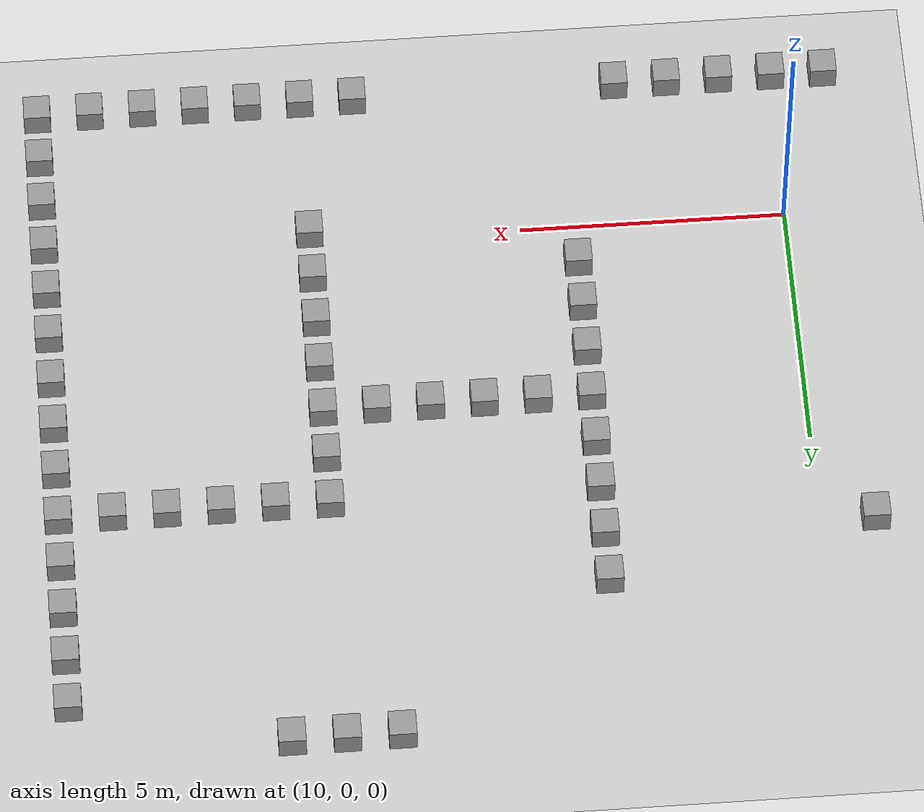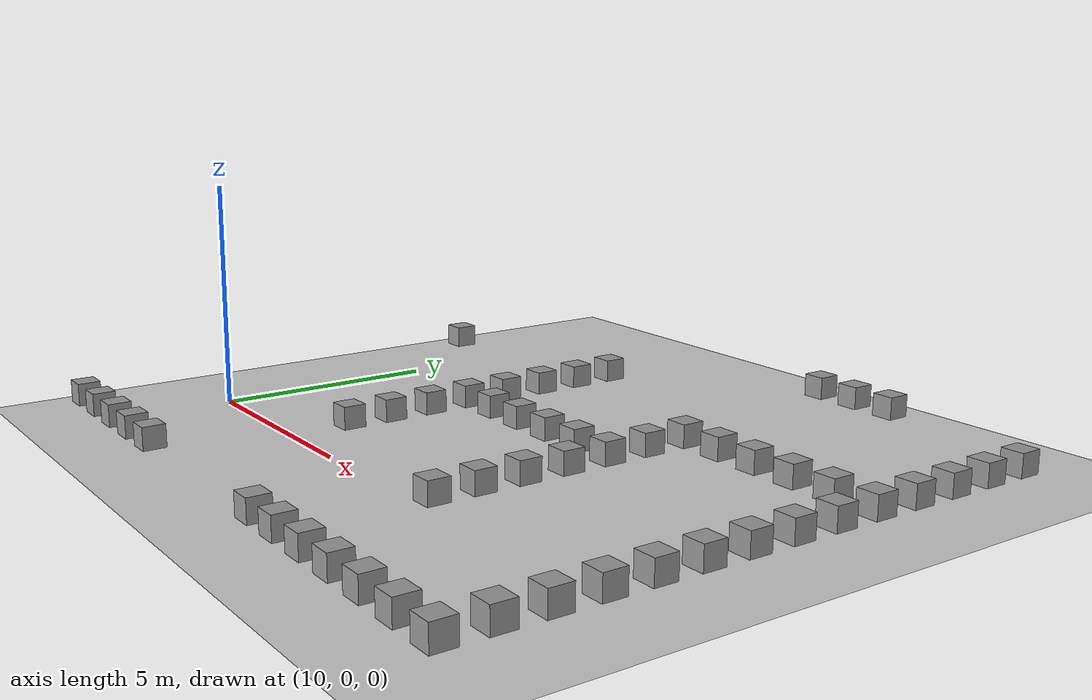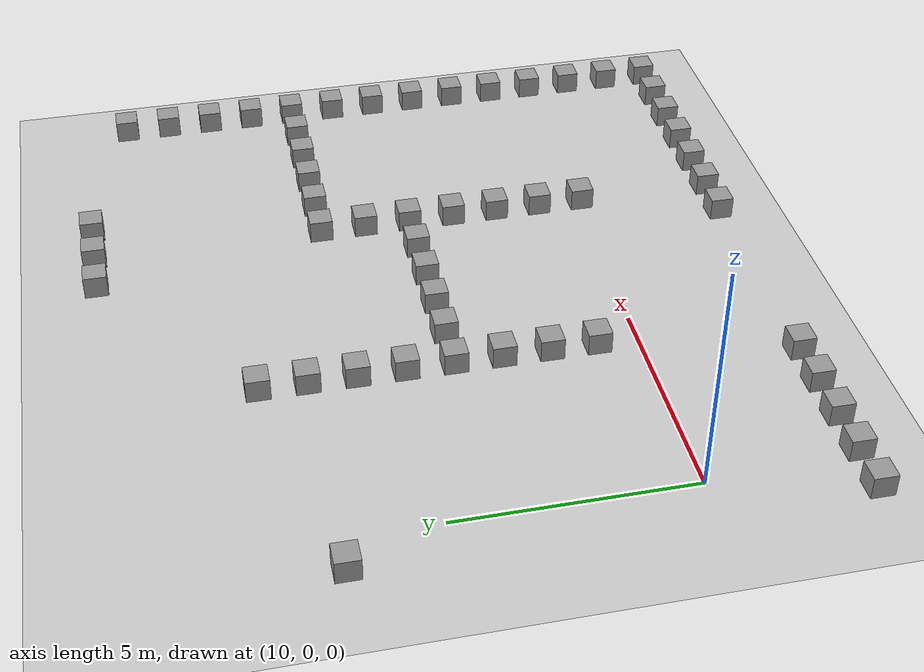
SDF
<sdf version="1.6">
 <world name="default">
  <model name="ground_plane">
   <static>1</static>
   <link name="link">
    <collision name="collision">
     <geometry><plane><normal>0 0 1</normal><size>100 100</size></plane></geometry>
     <surface><friction><ode><mu>100</mu><mu2>50</mu2></ode></friction></surface>
    </collision>
    <visual name="visual">
     <cast_shadows>0</cast_shadows>
     <geometry><plane><normal>0 0 1</normal><size>100 100</size></plane></geometry>
     <material>
      <script><uri>file://media/materials/scripts/gazebo.material</uri><name>Gazebo/Grey</name></script>
     </material>
    </visual>
    <velocity_decay><linear>0</linear><angular>0</angular></velocity_decay>
   </link>
  </model>
  <model name="unit_box_25">
   <pose>9.00009 -3.00001 0.5 0 0 -1.5e-05</pose>
   <static>true</static>
   <link name="link">
    <inertial>
     <mass>1</mass>
     <inertia><ixx>1</ixx><ixy>0</ixy><ixz>0</ixz><iyy>1</iyy><iyz>0</iyz><izz>1</izz></inertia>
    </inertial>
    <collision name="collision"><geometry><box><size>0.5 0.5 0.5</size></box></geometry></collision>
    <visual name="visual">
     <geometry><box><size>0.5 0.5 0.5</size></box></geometry>
     <material>
      <script><uri>file://media/materials/scripts/gazebo.material</uri><name>Gazebo/Grey</name></script>
     </material>
    </visual>
    <velocity_decay><linear>0</linear><angular>0</angular></velocity_decay>
   </link>
   <static>0</static>
  </model>
  <model name="unit_box_35">
   <pose>10.0001 -2.99995 0.5 0 0 -1.5e-05</pose>
   <static>true</static>
   <link name="link">
    <inertial>
     <mass>1</mass>
     <inertia><ixx>1</ixx><ixy>0</ixy><ixz>0</ixz><iyy>1</iyy><iyz>0</iyz><izz>1</izz></inertia>
    </inertial>
    <collision name="collision"><geometry><box><size>0.5 0.5 0.5</size></box></geometry></collision>
    <visual name="visual">
     <geometry><box><size>0.5 0.5 0.5</size></box></geometry>
     <material>
      <script><uri>file://media/materials/scripts/gazebo.material</uri><name>Gazebo/Grey</name></script>
     </material>
    </visual>
    <velocity_decay><linear>0</linear><angular>0</angular></velocity_decay>
   </link>
   <static>0</static>
  </model>
  <model name="unit_box_36">
   <pose>11.0001 -2.99997 0.5 0 0 -1.5e-05</pose>
   <static>true</static>
   <link name="link">
    <inertial>
     <mass>1</mass>
     <inertia><ixx>1</ixx><ixy>0</ixy><ixz>0</ixz><iyy>1</iyy><iyz>0</iyz><izz>1</izz></inertia>
    </inertial>
    <collision name="collision"><geometry><box><size>0.5 0.5 0.5</size></box></geometry></collision>
    <visual name="visual">
     <geometry><box><size>0.5 0.5 0.5</size></box></geometry>
     <material>
      <script><uri>file://media/materials/scripts/gazebo.material</uri><name>Gazebo/Grey</name></script>
     </material>
    </visual>
    <velocity_decay><linear>0</linear><angular>0</angular></velocity_decay>
   </link>
   <static>0</static>
  </model>
  <model name="unit_box_37">
   <pose>12.0001 -2.99998 0.5 0 -0 -1.4e-05</pose>
   <static>true</static>
   <link name="link">
    <inertial>
     <mass>1</mass>
     <inertia><ixx>1</ixx><ixy>0</ixy><ixz>0</ixz><iyy>1</iyy><iyz>0</iyz><izz>1</izz></inertia>
    </inertial>
    <collision name="collision"><geometry><box><size>0.5 0.5 0.5</size></box></geometry></collision>
    <visual name="visual">
     <geometry><box><size>0.5 0.5 0.5</size></box></geometry>
     <material>
      <script><uri>file://media/materials/scripts/gazebo.material</uri><name>Gazebo/Grey</name></script>
     </material>
    </visual>
    <velocity_decay><linear>0</linear><angular>0</angular></velocity_decay>
   </link>
   <static>0</static>
  </model>
  <model name="unit_box_38">
   <pose>9.00001 7 0.5 -0 -0 -3e-06</pose>
   <static>true</static>
   <link name="link">
    <inertial>
     <mass>1</mass>
     <inertia><ixx>1</ixx><ixy>0</ixy><ixz>0</ixz><iyy>1</iyy><iyz>0</iyz><izz>1</izz></inertia>
    </inertial>
    <collision name="collision"><geometry><box><size>0.5 0.5 0.5</size></box></geometry></collision>
    <visual name="visual">
     <geometry><box><size>0.5 0.5 0.5</size></box></geometry>
     <material>
      <script><uri>file://media/materials/scripts/gazebo.material</uri><name>Gazebo/Grey</name></script>
     </material>
    </visual>
    <velocity_decay><linear>0</linear><angular>0</angular></velocity_decay>
   </link>
   <static>0</static>
  </model>
  <model name="unit_box_129">
   <pose>13.0001 -3 0.5 0 0 -1.3e-05</pose>
   <static>true</static>
   <link name="link">
    <inertial>
     <mass>1</mass>
     <inertia><ixx>1</ixx><ixy>0</ixy><ixz>0</ixz><iyy>1</iyy><iyz>0</iyz><izz>1</izz></inertia>
    </inertial>
    <collision name="collision"><geometry><box><size>0.5 0.5 0.5</size></box></geometry></collision>
    <visual name="visual">
     <geometry><box><size>0.5 0.5 0.5</size></box></geometry>
     <material>
      <script><uri>file://media/materials/scripts/gazebo.material</uri><name>Gazebo/Grey</name></script>
     </material>
    </visual>
    <velocity_decay><linear>0</linear><angular>0</angular></velocity_decay>
   </link>
   <static>0</static>
  </model>
  <model name="unit_box_166">
   <pose>20 11 0.5 0 -0 5e-06</pose>
   <static>true</static>
   <link name="link">
    <inertial>
     <mass>1</mass>
     <inertia><ixx>1</ixx><ixy>0</ixy><ixz>0</ixz><iyy>1</iyy><iyz>0</iyz><izz>1</izz></inertia>
    </inertial>
    <collision name="collision"><geometry><box><size>0.5 0.5 0.5</size></box></geometry></collision>
    <visual name="visual">
     <geometry><box><size>0.5 0.5 0.5</size></box></geometry>
     <material>
      <script><uri>file://media/materials/scripts/gazebo.material</uri><name>Gazebo/Grey</name></script>
     </material>
    </visual>
    <velocity_decay><linear>0</linear><angular>0</angular></velocity_decay>
   </link>
   <static>0</static>
  </model>
  <model name="unit_box_167">
   <pose>19 11 0.5 0 -0 4e-06</pose>
   <static>true</static>
   <link name="link">
    <inertial>
     <mass>1</mass>
     <inertia><ixx>1</ixx><ixy>0</ixy><ixz>0</ixz><iyy>1</iyy><iyz>0</iyz><izz>1</izz></inertia>
    </inertial>
    <collision name="collision"><geometry><box><size>0.5 0.5 0.5</size></box></geometry></collision>
    <visual name="visual">
     <geometry><box><size>0.5 0.5 0.5</size></box></geometry>
     <material>
      <script><uri>file://media/materials/scripts/gazebo.material</uri><name>Gazebo/Grey</name></script>
     </material>
    </visual>
    <velocity_decay><linear>0</linear><angular>0</angular></velocity_decay>
   </link>
   <static>0</static>
  </model>
  <model name="unit_box_168">
   <pose>18 11 0.5 0 -0 3e-06</pose>
   <static>true</static>
   <link name="link">
    <inertial>
     <mass>1</mass>
     <inertia><ixx>1</ixx><ixy>0</ixy><ixz>0</ixz><iyy>1</iyy><iyz>0</iyz><izz>1</izz></inertia>
    </inertial>
    <collision name="collision"><geometry><box><size>0.5 0.5 0.5</size></box></geometry></collision>
    <visual name="visual">
     <geometry><box><size>0.5 0.5 0.5</size></box></geometry>
     <material>
      <script><uri>file://media/materials/scripts/gazebo.material</uri><name>Gazebo/Grey</name></script>
     </material>
    </visual>
    <velocity_decay><linear>0</linear><angular>0</angular></velocity_decay>
   </link>
   <static>0</static>
  </model>
  <model name="unit_box_169">
   <pose>14 8.00027 0.5 -0 -0 -7.2e-05</pose>
   <static>true</static>
   <link name="link">
    <inertial>
     <mass>1</mass>
     <inertia><ixx>1</ixx><ixy>0</ixy><ixz>0</ixz><iyy>1</iyy><iyz>0</iyz><izz>1</izz></inertia>
    </inertial>
    <collision name="collision"><geometry><box><size>0.5 0.5 0.5</size></box></geometry></collision>
    <visual name="visual">
     <geometry><box><size>0.5 0.5 0.5</size></box></geometry>
     <material>
      <script><uri>file://media/materials/scripts/gazebo.material</uri><name>Gazebo/Grey</name></script>
     </material>
    </visual>
    <velocity_decay><linear>0</linear><angular>0</angular></velocity_decay>
   </link>
   <static>0</static>
  </model>
  <model name="unit_box_170">
   <pose>14 7.00026 0.5 0 -0 -7.2e-05</pose>
   <static>true</static>
   <link name="link">
    <inertial>
     <mass>1</mass>
     <inertia><ixx>1</ixx><ixy>0</ixy><ixz>0</ixz><iyy>1</iyy><iyz>0</iyz><izz>1</izz></inertia>
    </inertial>
    <collision name="collision"><geometry><box><size>0.5 0.5 0.5</size></box></geometry></collision>
    <visual name="visual">
     <geometry><box><size>0.5 0.5 0.5</size></box></geometry>
     <material>
      <script><uri>file://media/materials/scripts/gazebo.material</uri><name>Gazebo/Grey</name></script>
     </material>
    </visual>
    <velocity_decay><linear>0</linear><angular>0</angular></velocity_decay>
   </link>
   <static>0</static>
  </model>
  <model name="unit_box_171">
   <pose>13.9998 6.00025 0.5 0 -0 -8.2e-05</pose>
   <static>true</static>
   <link name="link">
    <inertial>
     <mass>1</mass>
     <inertia><ixx>1</ixx><ixy>0</ixy><ixz>0</ixz><iyy>1</iyy><iyz>0</iyz><izz>1</izz></inertia>
    </inertial>
    <collision name="collision"><geometry><box><size>0.5 0.5 0.5</size></box></geometry></collision>
    <visual name="visual">
     <geometry><box><size>0.5 0.5 0.5</size></box></geometry>
     <material>
      <script><uri>file://media/materials/scripts/gazebo.material</uri><name>Gazebo/Grey</name></script>
     </material>
    </visual>
    <velocity_decay><linear>0</linear><angular>0</angular></velocity_decay>
   </link>
   <static>0</static>
  </model>
  <model name="unit_box_172">
   <pose>13.9996 5.00025 0.5 -0 -0 -8.2e-05</pose>
   <static>true</static>
   <link name="link">
    <inertial>
     <mass>1</mass>
     <inertia><ixx>1</ixx><ixy>0</ixy><ixz>0</ixz><iyy>1</iyy><iyz>0</iyz><izz>1</izz></inertia>
    </inertial>
    <collision name="collision"><geometry><box><size>0.5 0.5 0.5</size></box></geometry></collision>
    <visual name="visual">
     <geometry><box><size>0.5 0.5 0.5</size></box></geometry>
     <material>
      <script><uri>file://media/materials/scripts/gazebo.material</uri><name>Gazebo/Grey</name></script>
     </material>
    </visual>
    <velocity_decay><linear>0</linear><angular>0</angular></velocity_decay>
   </link>
   <static>0</static>
  </model>
  <model name="unit_box_173">
   <pose>13.9973 3.99985 0.5 0 -0 0.000731</pose>
   <static>true</static>
   <link name="link">
    <inertial>
     <mass>1</mass>
     <inertia><ixx>1</ixx><ixy>0</ixy><ixz>0</ixz><iyy>1</iyy><iyz>0</iyz><izz>1</izz></inertia>
    </inertial>
    <collision name="collision"><geometry><box><size>0.5 0.5 0.5</size></box></geometry></collision>
    <visual name="visual">
     <geometry><box><size>0.5 0.5 0.5</size></box></geometry>
     <material>
      <script><uri>file://media/materials/scripts/gazebo.material</uri><name>Gazebo/Grey</name></script>
     </material>
    </visual>
    <velocity_decay><linear>0</linear><angular>0</angular></velocity_decay>
   </link>
   <static>0</static>
  </model>
  <model name="unit_box_174">
   <pose>13.9996 2.99959 0.5 0 -0 0.000224</pose>
   <static>true</static>
   <link name="link">
    <inertial>
     <mass>1</mass>
     <inertia><ixx>1</ixx><ixy>0</ixy><ixz>0</ixz><iyy>1</iyy><iyz>0</iyz><izz>1</izz></inertia>
    </inertial>
    <collision name="collision"><geometry><box><size>0.5 0.5 0.5</size></box></geometry></collision>
    <visual name="visual">
     <geometry><box><size>0.5 0.5 0.5</size></box></geometry>
     <material>
      <script><uri>file://media/materials/scripts/gazebo.material</uri><name>Gazebo/Grey</name></script>
     </material>
    </visual>
    <velocity_decay><linear>0</linear><angular>0</angular></velocity_decay>
   </link>
   <static>0</static>
  </model>
  <model name="unit_box_175">
   <pose>13.9999 1.99957 0.5 0 -0 0.000199</pose>
   <static>true</static>
   <link name="link">
    <inertial>
     <mass>1</mass>
     <inertia><ixx>1</ixx><ixy>0</ixy><ixz>0</ixz><iyy>1</iyy><iyz>0</iyz><izz>1</izz></inertia>
    </inertial>
    <collision name="collision"><geometry><box><size>0.5 0.5 0.5</size></box></geometry></collision>
    <visual name="visual">
     <geometry><box><size>0.5 0.5 0.5</size></box></geometry>
     <material>
      <script><uri>file://media/materials/scripts/gazebo.material</uri><name>Gazebo/Grey</name></script>
     </material>
    </visual>
    <velocity_decay><linear>0</linear><angular>0</angular></velocity_decay>
   </link>
   <static>0</static>
  </model>
  <model name="unit_box_176">
   <pose>14 0.999522 0.5 0 -0 9.7e-05</pose>
   <static>true</static>
   <link name="link">
    <inertial>
     <mass>1</mass>
     <inertia><ixx>1</ixx><ixy>0</ixy><ixz>0</ixz><iyy>1</iyy><iyz>0</iyz><izz>1</izz></inertia>
    </inertial>
    <collision name="collision"><geometry><box><size>0.5 0.5 0.5</size></box></geometry></collision>
    <visual name="visual">
     <geometry><box><size>0.5 0.5 0.5</size></box></geometry>
     <material>
      <script><uri>file://media/materials/scripts/gazebo.material</uri><name>Gazebo/Grey</name></script>
     </material>
    </visual>
    <velocity_decay><linear>0</linear><angular>0</angular></velocity_decay>
   </link>
   <static>0</static>
  </model>
  <model name="unit_box_177">
   <pose>14.9974 4.00019 0.5 0 -0 0.000926</pose>
   <static>true</static>
   <link name="link">
    <inertial>
     <mass>1</mass>
     <inertia><ixx>1</ixx><ixy>0</ixy><ixz>0</ixz><iyy>1</iyy><iyz>0</iyz><izz>1</izz></inertia>
    </inertial>
    <collision name="collision"><geometry><box><size>0.5 0.5 0.5</size></box></geometry></collision>
    <visual name="visual">
     <geometry><box><size>0.5 0.5 0.5</size></box></geometry>
     <material>
      <script><uri>file://media/materials/scripts/gazebo.material</uri><name>Gazebo/Grey</name></script>
     </material>
    </visual>
    <velocity_decay><linear>0</linear><angular>0</angular></velocity_decay>
   </link>
   <static>0</static>
  </model>
  <model name="unit_box_178">
   <pose>15.9974 4.00015 0.5 0 -0 0.001009</pose>
   <static>true</static>
   <link name="link">
    <inertial>
     <mass>1</mass>
     <inertia><ixx>1</ixx><ixy>0</ixy><ixz>0</ixz><iyy>1</iyy><iyz>0</iyz><izz>1</izz></inertia>
    </inertial>
    <collision name="collision"><geometry><box><size>0.5 0.5 0.5</size></box></geometry></collision>
    <visual name="visual">
     <geometry><box><size>0.5 0.5 0.5</size></box></geometry>
     <material>
      <script><uri>file://media/materials/scripts/gazebo.material</uri><name>Gazebo/Grey</name></script>
     </material>
    </visual>
    <velocity_decay><linear>0</linear><angular>0</angular></velocity_decay>
   </link>
   <static>0</static>
  </model>
  <model name="unit_box_179">
   <pose>16.9975 3.99993 0.5 0 -0 0.001188</pose>
   <static>true</static>
   <link name="link">
    <inertial>
     <mass>1</mass>
     <inertia><ixx>1</ixx><ixy>0</ixy><ixz>0</ixz><iyy>1</iyy><iyz>0</iyz><izz>1</izz></inertia>
    </inertial>
    <collision name="collision"><geometry><box><size>0.5 0.5 0.5</size></box></geometry></collision>
    <visual name="visual">
     <geometry><box><size>0.5 0.5 0.5</size></box></geometry>
     <material>
      <script><uri>file://media/materials/scripts/gazebo.material</uri><name>Gazebo/Grey</name></script>
     </material>
    </visual>
    <velocity_decay><linear>0</linear><angular>0</angular></velocity_decay>
   </link>
   <static>0</static>
  </model>
  <model name="unit_box_180">
   <pose>17.9977 4.00059 0.5 0 -0 0.001689</pose>
   <static>true</static>
   <link name="link">
    <inertial>
     <mass>1</mass>
     <inertia><ixx>1</ixx><ixy>0</ixy><ixz>0</ixz><iyy>1</iyy><iyz>0</iyz><izz>1</izz></inertia>
    </inertial>
    <collision name="collision"><geometry><box><size>0.5 0.5 0.5</size></box></geometry></collision>
    <visual name="visual">
     <geometry><box><size>0.5 0.5 0.5</size></box></geometry>
     <material>
      <script><uri>file://media/materials/scripts/gazebo.material</uri><name>Gazebo/Grey</name></script>
     </material>
    </visual>
    <velocity_decay><linear>0</linear><angular>0</angular></velocity_decay>
   </link>
   <static>0</static>
  </model>
  <model name="unit_box_181">
   <pose>18.9984 4.00065 0.5 0 -0 0.002125</pose>
   <static>true</static>
   <link name="link">
    <inertial>
     <mass>1</mass>
     <inertia><ixx>1</ixx><ixy>0</ixy><ixz>0</ixz><iyy>1</iyy><iyz>0</iyz><izz>1</izz></inertia>
    </inertial>
    <collision name="collision"><geometry><box><size>0.5 0.5 0.5</size></box></geometry></collision>
    <visual name="visual">
     <geometry><box><size>0.5 0.5 0.5</size></box></geometry>
     <material>
      <script><uri>file://media/materials/scripts/gazebo.material</uri><name>Gazebo/Grey</name></script>
     </material>
    </visual>
    <velocity_decay><linear>0</linear><angular>0</angular></velocity_decay>
   </link>
   <static>0</static>
  </model>
  <model name="unit_box_182">
   <pose>24.0018 -0.999661 0.5 0 -0 7.7e-05</pose>
   <static>true</static>
   <link name="link">
    <inertial>
     <mass>1</mass>
     <inertia><ixx>1</ixx><ixy>0</ixy><ixz>0</ixz><iyy>1</iyy><iyz>0</iyz><izz>1</izz></inertia>
    </inertial>
    <collision name="collision"><geometry><box><size>0.5 0.5 0.5</size></box></geometry></collision>
    <visual name="visual">
     <geometry><box><size>0.5 0.5 0.5</size></box></geometry>
     <material>
      <script><uri>file://media/materials/scripts/gazebo.material</uri><name>Gazebo/Grey</name></script>
     </material>
    </visual>
    <velocity_decay><linear>0</linear><angular>0</angular></velocity_decay>
   </link>
   <static>0</static>
  </model>
  <model name="unit_box_183">
   <pose>18.996 5.00065 0.5 0 -0 0.002125</pose>
   <static>true</static>
   <link name="link">
    <inertial>
     <mass>1</mass>
     <inertia><ixx>1</ixx><ixy>0</ixy><ixz>0</ixz><iyy>1</iyy><iyz>0</iyz><izz>1</izz></inertia>
    </inertial>
    <collision name="collision"><geometry><box><size>0.5 0.5 0.5</size></box></geometry></collision>
    <visual name="visual">
     <geometry><box><size>0.5 0.5 0.5</size></box></geometry>
     <material>
      <script><uri>file://media/materials/scripts/gazebo.material</uri><name>Gazebo/Grey</name></script>
     </material>
    </visual>
    <velocity_decay><linear>0</linear><angular>0</angular></velocity_decay>
   </link>
   <static>0</static>
  </model>
  <model name="unit_box_184">
   <pose>18.9921 6.00258 0.5 0 -0 0.000734</pose>
   <static>true</static>
   <link name="link">
    <inertial>
     <mass>1</mass>
     <inertia><ixx>1</ixx><ixy>0</ixy><ixz>0</ixz><iyy>1</iyy><iyz>0</iyz><izz>1</izz></inertia>
    </inertial>
    <collision name="collision"><geometry><box><size>0.5 0.5 0.5</size></box></geometry></collision>
    <visual name="visual">
     <geometry><box><size>0.5 0.5 0.5</size></box></geometry>
     <material>
      <script><uri>file://media/materials/scripts/gazebo.material</uri><name>Gazebo/Grey</name></script>
     </material>
    </visual>
    <velocity_decay><linear>0</linear><angular>0</angular></velocity_decay>
   </link>
   <static>0</static>
  </model>
  <model name="unit_box_185">
   <pose>21.0007 5.99621 0.5 0 -0 0.00019</pose>
   <static>true</static>
   <link name="link">
    <inertial>
     <mass>1</mass>
     <inertia><ixx>1</ixx><ixy>0</ixy><ixz>0</ixz><iyy>1</iyy><iyz>0</iyz><izz>1</izz></inertia>
    </inertial>
    <collision name="collision"><geometry><box><size>0.5 0.5 0.5</size></box></geometry></collision>
    <visual name="visual">
     <geometry><box><size>0.5 0.5 0.5</size></box></geometry>
     <material>
      <script><uri>file://media/materials/scripts/gazebo.material</uri><name>Gazebo/Grey</name></script>
     </material>
    </visual>
    <velocity_decay><linear>0</linear><angular>0</angular></velocity_decay>
   </link>
   <static>0</static>
  </model>
  <model name="unit_box_186">
   <pose>22.0007 5.99697 0.5 0 -0 0.000178</pose>
   <static>true</static>
   <link name="link">
    <inertial>
     <mass>1</mass>
     <inertia><ixx>1</ixx><ixy>0</ixy><ixz>0</ixz><iyy>1</iyy><iyz>0</iyz><izz>1</izz></inertia>
    </inertial>
    <collision name="collision"><geometry><box><size>0.5 0.5 0.5</size></box></geometry></collision>
    <visual name="visual">
     <geometry><box><size>0.5 0.5 0.5</size></box></geometry>
     <material>
      <script><uri>file://media/materials/scripts/gazebo.material</uri><name>Gazebo/Grey</name></script>
     </material>
    </visual>
    <velocity_decay><linear>0</linear><angular>0</angular></velocity_decay>
   </link>
   <static>0</static>
  </model>
  <model name="unit_box_187">
   <pose>23.0007 5.99842 0.5 0 -0 0.000172</pose>
   <static>true</static>
   <link name="link">
    <inertial>
     <mass>1</mass>
     <inertia><ixx>1</ixx><ixy>0</ixy><ixz>0</ixz><iyy>1</iyy><iyz>0</iyz><izz>1</izz></inertia>
    </inertial>
    <collision name="collision"><geometry><box><size>0.5 0.5 0.5</size></box></geometry></collision>
    <visual name="visual">
     <geometry><box><size>0.5 0.5 0.5</size></box></geometry>
     <material>
      <script><uri>file://media/materials/scripts/gazebo.material</uri><name>Gazebo/Grey</name></script>
     </material>
    </visual>
    <velocity_decay><linear>0</linear><angular>0</angular></velocity_decay>
   </link>
   <static>0</static>
  </model>
  <model name="unit_box_188">
   <pose>24.0001 10.0004 0.5 0 -0 3.9e-05</pose>
   <static>true</static>
   <link name="link">
    <inertial>
     <mass>1</mass>
     <inertia><ixx>1</ixx><ixy>0</ixy><ixz>0</ixz><iyy>1</iyy><iyz>0</iyz><izz>1</izz></inertia>
    </inertial>
    <collision name="collision"><geometry><box><size>0.5 0.5 0.5</size></box></geometry></collision>
    <visual name="visual">
     <geometry><box><size>0.5 0.5 0.5</size></box></geometry>
     <material>
      <script><uri>file://media/materials/scripts/gazebo.material</uri><name>Gazebo/Grey</name></script>
     </material>
    </visual>
    <velocity_decay><linear>0</linear><angular>0</angular></velocity_decay>
   </link>
   <static>0</static>
  </model>
  <model name="unit_box_189">
   <pose>24.0001 9.00043 0.5 0 -0 4.6e-05</pose>
   <static>true</static>
   <link name="link">
    <inertial>
     <mass>1</mass>
     <inertia><ixx>1</ixx><ixy>0</ixy><ixz>0</ixz><iyy>1</iyy><iyz>0</iyz><izz>1</izz></inertia>
    </inertial>
    <collision name="collision"><geometry><box><size>0.5 0.5 0.5</size></box></geometry></collision>
    <visual name="visual">
     <geometry><box><size>0.5 0.5 0.5</size></box></geometry>
     <material>
      <script><uri>file://media/materials/scripts/gazebo.material</uri><name>Gazebo/Grey</name></script>
     </material>
    </visual>
    <velocity_decay><linear>0</linear><angular>0</angular></velocity_decay>
   </link>
   <static>0</static>
  </model>
  <model name="unit_box_190">
   <pose>24.0001 8.00042 0.5 0 -0 3.9e-05</pose>
   <static>true</static>
   <link name="link">
    <inertial>
     <mass>1</mass>
     <inertia><ixx>1</ixx><ixy>0</ixy><ixz>0</ixz><iyy>1</iyy><iyz>0</iyz><izz>1</izz></inertia>
    </inertial>
    <collision name="collision"><geometry><box><size>0.5 0.5 0.5</size></box></geometry></collision>
    <visual name="visual">
     <geometry><box><size>0.5 0.5 0.5</size></box></geometry>
     <material>
      <script><uri>file://media/materials/scripts/gazebo.material</uri><name>Gazebo/Grey</name></script>
     </material>
    </visual>
    <velocity_decay><linear>0</linear><angular>0</angular></velocity_decay>
   </link>
   <static>0</static>
  </model>
  <model name="unit_box_191">
   <pose>24.0002 7.00042 0.5 0 -0 3.8e-05</pose>
   <static>true</static>
   <link name="link">
    <inertial>
     <mass>1</mass>
     <inertia><ixx>1</ixx><ixy>0</ixy><ixz>0</ixz><iyy>1</iyy><iyz>0</iyz><izz>1</izz></inertia>
    </inertial>
    <collision name="collision"><geometry><box><size>0.5 0.5 0.5</size></box></geometry></collision>
    <visual name="visual">
     <geometry><box><size>0.5 0.5 0.5</size></box></geometry>
     <material>
      <script><uri>file://media/materials/scripts/gazebo.material</uri><name>Gazebo/Grey</name></script>
     </material>
    </visual>
    <velocity_decay><linear>0</linear><angular>0</angular></velocity_decay>
   </link>
   <static>0</static>
  </model>
  <model name="unit_box_192">
   <pose>24.0014 6.00042 0.5 0 -0 3.8e-05</pose>
   <static>true</static>
   <link name="link">
    <inertial>
     <mass>1</mass>
     <inertia><ixx>1</ixx><ixy>0</ixy><ixz>0</ixz><iyy>1</iyy><iyz>0</iyz><izz>1</izz></inertia>
    </inertial>
    <collision name="collision"><geometry><box><size>0.5 0.5 0.5</size></box></geometry></collision>
    <visual name="visual">
     <geometry><box><size>0.5 0.5 0.5</size></box></geometry>
     <material>
      <script><uri>file://media/materials/scripts/gazebo.material</uri><name>Gazebo/Grey</name></script>
     </material>
    </visual>
    <velocity_decay><linear>0</linear><angular>0</angular></velocity_decay>
   </link>
   <static>0</static>
  </model>
  <model name="unit_box_193">
   <pose>19.996 5.99787 0.5 0 -0 0.000185</pose>
   <static>true</static>
   <link name="link">
    <inertial>
     <mass>1</mass>
     <inertia><ixx>1</ixx><ixy>0</ixy><ixz>0</ixz><iyy>1</iyy><iyz>0</iyz><izz>1</izz></inertia>
    </inertial>
    <collision name="collision"><geometry><box><size>0.5 0.5 0.5</size></box></geometry></collision>
    <visual name="visual">
     <geometry><box><size>0.5 0.5 0.5</size></box></geometry>
     <material>
      <script><uri>file://media/materials/scripts/gazebo.material</uri><name>Gazebo/Grey</name></script>
     </material>
    </visual>
    <velocity_decay><linear>0</linear><angular>0</angular></velocity_decay>
   </link>
   <static>0</static>
  </model>
  <model name="unit_box_194">
   <pose>24.0008 5.00042 0.5 0 -0 3.8e-05</pose>
   <static>true</static>
   <link name="link">
    <inertial>
     <mass>1</mass>
     <inertia><ixx>1</ixx><ixy>0</ixy><ixz>0</ixz><iyy>1</iyy><iyz>0</iyz><izz>1</izz></inertia>
    </inertial>
    <collision name="collision"><geometry><box><size>0.5 0.5 0.5</size></box></geometry></collision>
    <visual name="visual">
     <geometry><box><size>0.5 0.5 0.5</size></box></geometry>
     <material>
      <script><uri>file://media/materials/scripts/gazebo.material</uri><name>Gazebo/Grey</name></script>
     </material>
    </visual>
    <velocity_decay><linear>0</linear><angular>0</angular></velocity_decay>
   </link>
   <static>0</static>
  </model>
  <model name="unit_box_195">
   <pose>24.0001 4.00041 0.5 0 -0 5.9e-05</pose>
   <static>true</static>
   <link name="link">
    <inertial>
     <mass>1</mass>
     <inertia><ixx>1</ixx><ixy>0</ixy><ixz>0</ixz><iyy>1</iyy><iyz>0</iyz><izz>1</izz></inertia>
    </inertial>
    <collision name="collision"><geometry><box><size>0.5 0.5 0.5</size></box></geometry></collision>
    <visual name="visual">
     <geometry><box><size>0.5 0.5 0.5</size></box></geometry>
     <material>
      <script><uri>file://media/materials/scripts/gazebo.material</uri><name>Gazebo/Grey</name></script>
     </material>
    </visual>
    <velocity_decay><linear>0</linear><angular>0</angular></velocity_decay>
   </link>
   <static>0</static>
  </model>
  <model name="unit_box_196">
   <pose>24 3.00041 0.5 0 -0 5.5e-05</pose>
   <static>true</static>
   <link name="link">
    <inertial>
     <mass>1</mass>
     <inertia><ixx>1</ixx><ixy>0</ixy><ixz>0</ixz><iyy>1</iyy><iyz>0</iyz><izz>1</izz></inertia>
    </inertial>
    <collision name="collision"><geometry><box><size>0.5 0.5 0.5</size></box></geometry></collision>
    <visual name="visual">
     <geometry><box><size>0.5 0.5 0.5</size></box></geometry>
     <material>
      <script><uri>file://media/materials/scripts/gazebo.material</uri><name>Gazebo/Grey</name></script>
     </material>
    </visual>
    <velocity_decay><linear>0</linear><angular>0</angular></velocity_decay>
   </link>
   <static>0</static>
  </model>
  <model name="unit_box_197">
   <pose>23.9999 2.00038 0.5 0 -0 6.3e-05</pose>
   <static>true</static>
   <link name="link">
    <inertial>
     <mass>1</mass>
     <inertia><ixx>1</ixx><ixy>0</ixy><ixz>0</ixz><iyy>1</iyy><iyz>0</iyz><izz>1</izz></inertia>
    </inertial>
    <collision name="collision"><geometry><box><size>0.5 0.5 0.5</size></box></geometry></collision>
    <visual name="visual">
     <geometry><box><size>0.5 0.5 0.5</size></box></geometry>
     <material>
      <script><uri>file://media/materials/scripts/gazebo.material</uri><name>Gazebo/Grey</name></script>
     </material>
    </visual>
    <velocity_decay><linear>0</linear><angular>0</angular></velocity_decay>
   </link>
   <static>0</static>
  </model>
  <model name="unit_box_198">
   <pose>23.9999 1.00035 0.5 0 -0 7.1e-05</pose>
   <static>true</static>
   <link name="link">
    <inertial>
     <mass>1</mass>
     <inertia><ixx>1</ixx><ixy>0</ixy><ixz>0</ixz><iyy>1</iyy><iyz>0</iyz><izz>1</izz></inertia>
    </inertial>
    <collision name="collision"><geometry><box><size>0.5 0.5 0.5</size></box></geometry></collision>
    <visual name="visual">
     <geometry><box><size>0.5 0.5 0.5</size></box></geometry>
     <material>
      <script><uri>file://media/materials/scripts/gazebo.material</uri><name>Gazebo/Grey</name></script>
     </material>
    </visual>
    <velocity_decay><linear>0</linear><angular>0</angular></velocity_decay>
   </link>
   <static>0</static>
  </model>
  <model name="unit_box_199">
   <pose>23.9997 0.000344 0.5 0 -0 7.4e-05</pose>
   <static>true</static>
   <link name="link">
    <inertial>
     <mass>1</mass>
     <inertia><ixx>1</ixx><ixy>0</ixy><ixz>0</ixz><iyy>1</iyy><iyz>0</iyz><izz>1</izz></inertia>
    </inertial>
    <collision name="collision"><geometry><box><size>0.5 0.5 0.5</size></box></geometry></collision>
    <visual name="visual">
     <geometry><box><size>0.5 0.5 0.5</size></box></geometry>
     <material>
      <script><uri>file://media/materials/scripts/gazebo.material</uri><name>Gazebo/Grey</name></script>
     </material>
    </visual>
    <velocity_decay><linear>0</linear><angular>0</angular></velocity_decay>
   </link>
   <static>0</static>
  </model>
  <model name="unit_box_200">
   <pose>19 2.9997 0.5 0 -0 0.000228</pose>
   <static>true</static>
   <link name="link">
    <inertial>
     <mass>1</mass>
     <inertia><ixx>1</ixx><ixy>0</ixy><ixz>0</ixz><iyy>1</iyy><iyz>0</iyz><izz>1</izz></inertia>
    </inertial>
    <collision name="collision"><geometry><box><size>0.5 0.5 0.5</size></box></geometry></collision>
    <visual name="visual">
     <geometry><box><size>0.5 0.5 0.5</size></box></geometry>
     <material>
      <script><uri>file://media/materials/scripts/gazebo.material</uri><name>Gazebo/Grey</name></script>
     </material>
    </visual>
    <velocity_decay><linear>0</linear><angular>0</angular></velocity_decay>
   </link>
   <static>0</static>
  </model>
  <model name="unit_box_201">
   <pose>19 1.99966 0.5 0 -0 0.000143</pose>
   <static>true</static>
   <link name="link">
    <inertial>
     <mass>1</mass>
     <inertia><ixx>1</ixx><ixy>0</ixy><ixz>0</ixz><iyy>1</iyy><iyz>0</iyz><izz>1</izz></inertia>
    </inertial>
    <collision name="collision"><geometry><box><size>0.5 0.5 0.5</size></box></geometry></collision>
    <visual name="visual">
     <geometry><box><size>0.5 0.5 0.5</size></box></geometry>
     <material>
      <script><uri>file://media/materials/scripts/gazebo.material</uri><name>Gazebo/Grey</name></script>
     </material>
    </visual>
    <velocity_decay><linear>0</linear><angular>0</angular></velocity_decay>
   </link>
   <static>0</static>
  </model>
  <model name="unit_box_202">
   <pose>19 0.999639 0.5 0 -0 0.00011</pose>
   <static>true</static>
   <link name="link">
    <inertial>
     <mass>1</mass>
     <inertia><ixx>1</ixx><ixy>0</ixy><ixz>0</ixz><iyy>1</iyy><iyz>0</iyz><izz>1</izz></inertia>
    </inertial>
    <collision name="collision"><geometry><box><size>0.5 0.5 0.5</size></box></geometry></collision>
    <visual name="visual">
     <geometry><box><size>0.5 0.5 0.5</size></box></geometry>
     <material>
      <script><uri>file://media/materials/scripts/gazebo.material</uri><name>Gazebo/Grey</name></script>
     </material>
    </visual>
    <velocity_decay><linear>0</linear><angular>0</angular></velocity_decay>
   </link>
   <static>0</static>
  </model>
  <model name="unit_box_203">
   <pose>19 -0.000365 0.5 0 -0 0.000106</pose>
   <static>true</static>
   <link name="link">
    <inertial>
     <mass>1</mass>
     <inertia><ixx>1</ixx><ixy>0</ixy><ixz>0</ixz><iyy>1</iyy><iyz>0</iyz><izz>1</izz></inertia>
    </inertial>
    <collision name="collision"><geometry><box><size>0.5 0.5 0.5</size></box></geometry></collision>
    <visual name="visual">
     <geometry><box><size>0.5 0.5 0.5</size></box></geometry>
     <material>
      <script><uri>file://media/materials/scripts/gazebo.material</uri><name>Gazebo/Grey</name></script>
     </material>
    </visual>
    <velocity_decay><linear>0</linear><angular>0</angular></velocity_decay>
   </link>
   <static>0</static>
  </model>
  <model name="unit_box_204">
   <pose>24 -1.99999 0.5 0 -0 1e-06</pose>
   <static>true</static>
   <link name="link">
    <inertial>
     <mass>1</mass>
     <inertia><ixx>1</ixx><ixy>0</ixy><ixz>0</ixz><iyy>1</iyy><iyz>0</iyz><izz>1</izz></inertia>
    </inertial>
    <collision name="collision"><geometry><box><size>0.5 0.5 0.5</size></box></geometry></collision>
    <visual name="visual">
     <geometry><box><size>0.5 0.5 0.5</size></box></geometry>
     <material>
      <script><uri>file://media/materials/scripts/gazebo.material</uri><name>Gazebo/Grey</name></script>
     </material>
    </visual>
    <velocity_decay><linear>0</linear><angular>0</angular></velocity_decay>
   </link>
   <static>0</static>
  </model>
  <model name="unit_box_205">
   <pose>24 -2.99999 0.5 0 -0 1e-06</pose>
   <static>true</static>
   <link name="link">
    <inertial>
     <mass>1</mass>
     <inertia><ixx>1</ixx><ixy>0</ixy><ixz>0</ixz><iyy>1</iyy><iyz>0</iyz><izz>1</izz></inertia>
    </inertial>
    <collision name="collision"><geometry><box><size>0.5 0.5 0.5</size></box></geometry></collision>
    <visual name="visual">
     <geometry><box><size>0.5 0.5 0.5</size></box></geometry>
     <material>
      <script><uri>file://media/materials/scripts/gazebo.material</uri><name>Gazebo/Grey</name></script>
     </material>
    </visual>
    <velocity_decay><linear>0</linear><angular>0</angular></velocity_decay>
   </link>
   <static>0</static>
  </model>
  <model name="unit_box_209">
   <pose>18 -3 0.5 0 0 -2e-06</pose>
   <static>true</static>
   <link name="link">
    <inertial>
     <mass>1</mass>
     <inertia><ixx>1</ixx><ixy>0</ixy><ixz>0</ixz><iyy>1</iyy><iyz>0</iyz><izz>1</izz></inertia>
    </inertial>
    <collision name="collision"><geometry><box><size>0.5 0.5 0.5</size></box></geometry></collision>
    <visual name="visual">
     <geometry><box><size>0.5 0.5 0.5</size></box></geometry>
     <material>
      <script><uri>file://media/materials/scripts/gazebo.material</uri><name>Gazebo/Grey</name></script>
     </material>
    </visual>
    <velocity_decay><linear>0</linear><angular>0</angular></velocity_decay>
   </link>
   <static>0</static>
  </model>
  <model name="unit_box_210">
   <pose>19 -3 0.5 -0 -0 -2e-06</pose>
   <static>true</static>
   <link name="link">
    <inertial>
     <mass>1</mass>
     <inertia><ixx>1</ixx><ixy>0</ixy><ixz>0</ixz><iyy>1</iyy><iyz>0</iyz><izz>1</izz></inertia>
    </inertial>
    <collision name="collision"><geometry><box><size>0.5 0.5 0.5</size></box></geometry></collision>
    <visual name="visual">
     <geometry><box><size>0.5 0.5 0.5</size></box></geometry>
     <material>
      <script><uri>file://media/materials/scripts/gazebo.material</uri><name>Gazebo/Grey</name></script>
     </material>
    </visual>
    <velocity_decay><linear>0</linear><angular>0</angular></velocity_decay>
   </link>
   <static>0</static>
  </model>
  <model name="unit_box_211">
   <pose>20 -3 0.5 -0 -0 -2e-06</pose>
   <static>true</static>
   <link name="link">
    <inertial>
     <mass>1</mass>
     <inertia><ixx>1</ixx><ixy>0</ixy><ixz>0</ixz><iyy>1</iyy><iyz>0</iyz><izz>1</izz></inertia>
    </inertial>
    <collision name="collision"><geometry><box><size>0.5 0.5 0.5</size></box></geometry></collision>
    <visual name="visual">
     <geometry><box><size>0.5 0.5 0.5</size></box></geometry>
     <material>
      <script><uri>file://media/materials/scripts/gazebo.material</uri><name>Gazebo/Grey</name></script>
     </material>
    </visual>
    <velocity_decay><linear>0</linear><angular>0</angular></velocity_decay>
   </link>
   <static>0</static>
  </model>
  <model name="unit_box_212">
   <pose>21 -3 0.5 0 0 -3e-06</pose>
   <static>true</static>
   <link name="link">
    <inertial>
     <mass>1</mass>
     <inertia><ixx>1</ixx><ixy>0</ixy><ixz>0</ixz><iyy>1</iyy><iyz>0</iyz><izz>1</izz></inertia>
    </inertial>
    <collision name="collision"><geometry><box><size>0.5 0.5 0.5</size></box></geometry></collision>
    <visual name="visual">
     <geometry><box><size>0.5 0.5 0.5</size></box></geometry>
     <material>
      <script><uri>file://media/materials/scripts/gazebo.material</uri><name>Gazebo/Grey</name></script>
     </material>
    </visual>
    <velocity_decay><linear>0</linear><angular>0</angular></velocity_decay>
   </link>
   <static>0</static>
  </model>
  <model name="unit_box_213">
   <pose>22 -3 0.5 0 0 -3e-06</pose>
   <static>true</static>
   <link name="link">
    <inertial>
     <mass>1</mass>
     <inertia><ixx>1</ixx><ixy>0</ixy><ixz>0</ixz><iyy>1</iyy><iyz>0</iyz><izz>1</izz></inertia>
    </inertial>
    <collision name="collision"><geometry><box><size>0.5 0.5 0.5</size></box></geometry></collision>
    <visual name="visual">
     <geometry><box><size>0.5 0.5 0.5</size></box></geometry>
     <material>
      <script><uri>file://media/materials/scripts/gazebo.material</uri><name>Gazebo/Grey</name></script>
     </material>
    </visual>
    <velocity_decay><linear>0</linear><angular>0</angular></velocity_decay>
   </link>
   <static>0</static>
  </model>
  <model name="unit_box_214">
   <pose>23 -3 0.5 -0 -0 -3e-06</pose>
   <static>true</static>
   <link name="link">
    <inertial>
     <mass>1</mass>
     <inertia><ixx>1</ixx><ixy>0</ixy><ixz>0</ixz><iyy>1</iyy><iyz>0</iyz><izz>1</izz></inertia>
    </inertial>
    <collision name="collision"><geometry><box><size>0.5 0.5 0.5</size></box></geometry></collision>
    <visual name="visual">
     <geometry><box><size>0.5 0.5 0.5</size></box></geometry>
     <material>
      <script><uri>file://media/materials/scripts/gazebo.material</uri><name>Gazebo/Grey</name></script>
     </material>
    </visual>
    <velocity_decay><linear>0</linear><angular>0</angular></velocity_decay>
   </link>
   <static>0</static>
  </model>
 </world>
</sdf>
